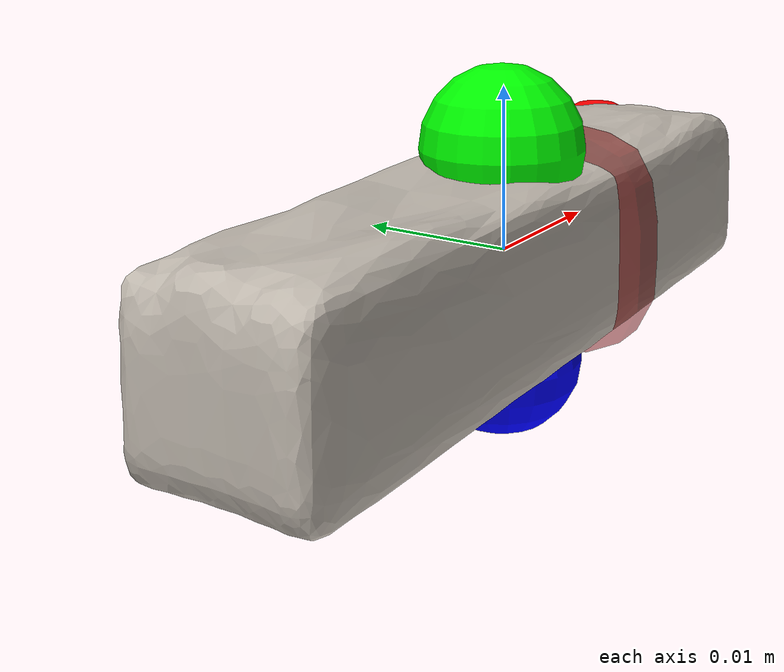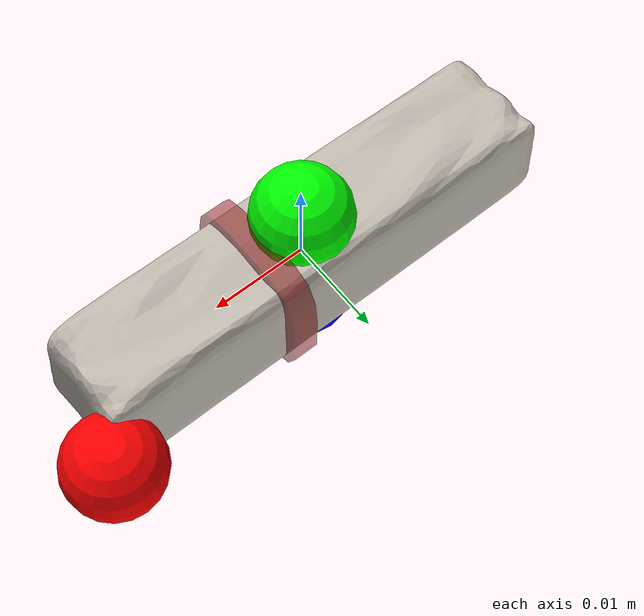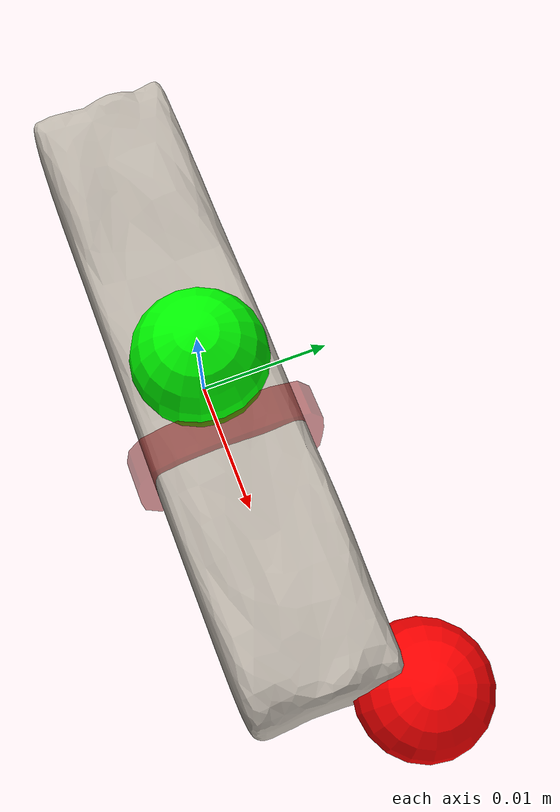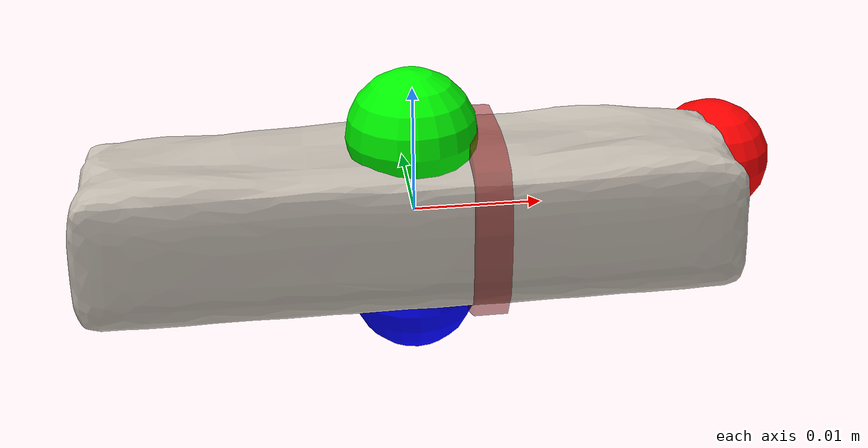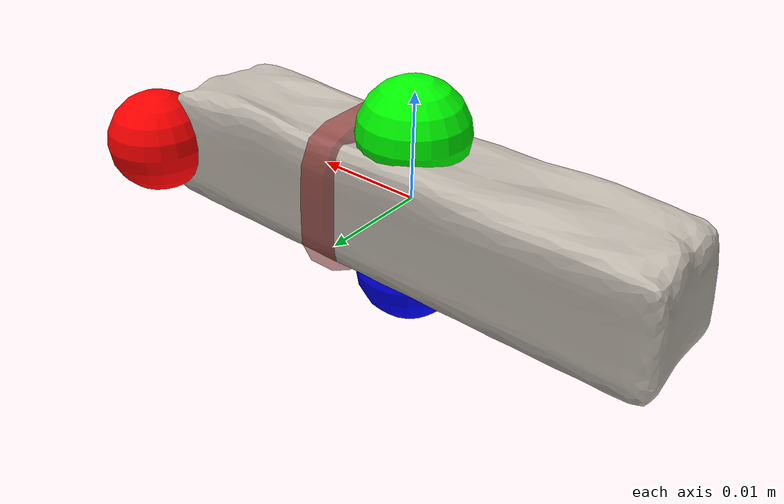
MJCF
<?xml version='1.0' encoding='UTF-8'?>
<mujoco model="model">
  <compiler angle="radian"/>
  <asset>
    <mesh file="visual/CreamCheese005.obj" name="CreamCheese005_vis"/>
    <texture file="visual/T_BC001.png" name="CreamCheese005_material" type="2d"/>
    <material name="CreamCheese005_material" rgba="1 1 1 1.0" texture="CreamCheese005_material" shininess="0" specular="0.1"/>
    <mesh file="collision/CreamCheese005001.obj" name="CreamCheese005001_mesh"/>
  </asset>
  <default>
    <default class="visual">
      <geom conaffinity="0" contype="0" group="1" type="mesh"/>
    </default>
    <default class="collision">
      <geom group="0" rgba="0.5 0 0 0.5"/>
    </default>
    <default class="spawn">
      <geom group="0" rgba="1 1 1 0.5" contype="0" conaffinity="0"/>
      <site group="0" rgba="1 1 1 0.5"/>
    </default>
    <default class="region">
      <geom group="1" conaffinity="0" contype="0" rgba="0 1 0 0"/>
    </default>
  </default>
  <worldbody>
    <body>
      <body name="object">
        <geom mesh="CreamCheese005_vis" type="mesh" solimp="0.998 0.998 0.001" solref="0.001 1" density="100" friction="0.95 0.3 0.1" class="visual" material="CreamCheese005_material"/>
        <geom mesh="CreamCheese005001_mesh" type="mesh" class="collision"/>
      </body>
      <site rgba="1 0 0 1" size="0.005" pos="0.0261563 0.0067514 -0.00027307000000000026" name="horizontal_radius_site"/>
      <site rgba="0 1 0 1" size="0.005" pos="-7.398499999999854e-05 6.0450000000000094e-05 0.00634009" name="top_site"/>
      <site rgba="0 0 1 1" size="0.005" pos="-7.398499999999854e-05 6.0450000000000094e-05 -0.00688623" name="bottom_site"/>
    </body>
  </worldbody>
  <actuator/>
</mujoco>
